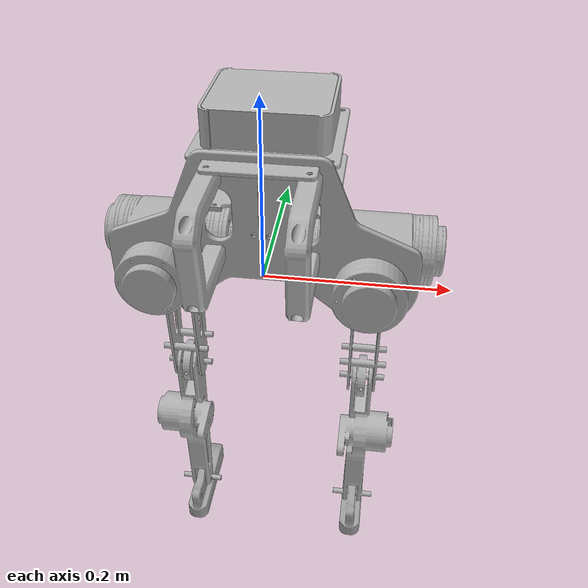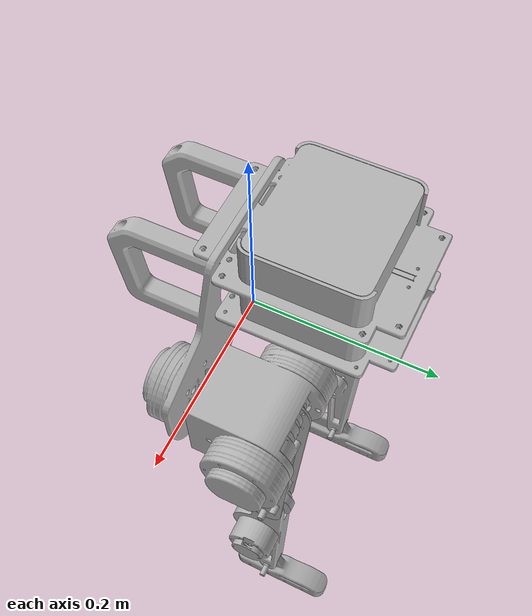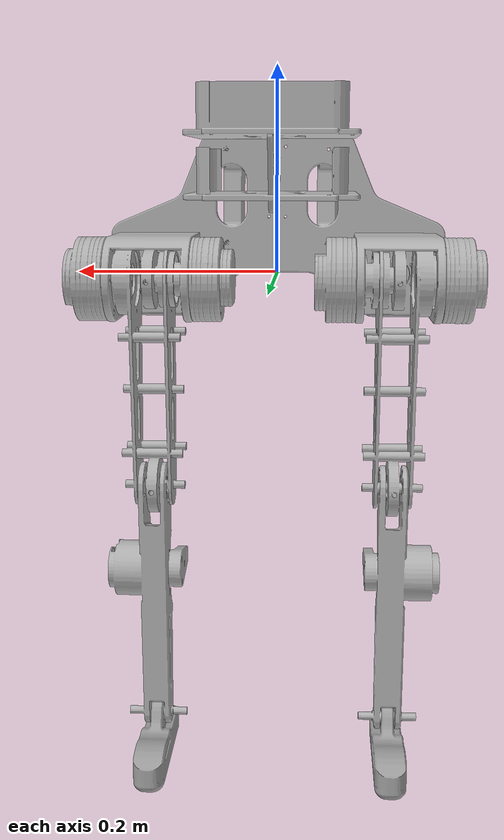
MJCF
<mujoco model="saturdayMASTER.SLDASM">
  <compiler angle="radian"/>
  <asset>
    <mesh name="base_link" file="base_link.STL"/>
    <mesh name="HR" file="HR.STL"/>
    <mesh name="TR" file="TR.STL"/>
    <mesh name="SR" file="SR.STL"/>
    <mesh name="FR" file="FR.STL"/>
    <mesh name="HL" file="HL.STL"/>
    <mesh name="TL" file="TL.STL"/>
    <mesh name="SL" file="SL.STL"/>
    <mesh name="FL" file="FL.STL"/>
    <mesh name="PCPC" file="PCPC.STL"/>
  </asset>
  <worldbody>
    <geom type="mesh" rgba="0.69804 0.69804 0.69804 1" mesh="base_link"/>
    <geom pos="0 0.1668 0.076047" type="mesh" rgba="0.69804 0.69804 0.69804 1" mesh="PCPC"/>
    <body name="HR" pos="0.116 0.0760307 0">
      <inertial pos="-0.0022112 -0.0074687 0.0012046" quat="0.610545 0.791982 -0.00018656 -0.000166422" mass="1.1716" diaginertia="0.0010107 0.000889554 0.000807186"/>
      <joint name="HR" pos="0 0 0" axis="0 -1 0" limited="false"/>
      <geom type="mesh" rgba="0.69804 0.69804 0.69804 1" mesh="HR"/>
      <body name="TR">
        <inertial pos="0.0032217 -1.4794e-12 -0.11697" quat="1 -2.44026e-05 0 0" mass="0.2485" diaginertia="0.00045966 0.00043118 6.6608e-05"/>
        <joint name="TR" pos="0 0 0" axis="-1 0 0" limited="false"/>
        <geom type="mesh" rgba="0.69804 0.69804 0.69804 1" mesh="TR"/>
        <body name="SR" pos="0 0 -0.2">
          <inertial pos="0.013454 -0.0086691 -0.1053" quat="0.999944 0.00459107 -0.00078075 0.00948332" mass="0.45579" diaginertia="0.000577103 0.000543322 0.000136545"/>
          <joint name="SR" pos="0 0 0" axis="1 0 0" limited="false"/>
          <geom type="mesh" rgba="0.69804 0.69804 0.69804 1" mesh="SR"/>
          <body name="FR" pos="0 0 -0.24">
            <inertial pos="6.2538e-06 0.015791 -0.026269" quat="0.71996 0.694016 0.000136179 -0.000175049" mass="0.12898" diaginertia="0.00019456 0.000193198 1.66785e-05"/>
            <joint name="FR" pos="0 0 0" axis="1 0 0" limited="false"/>
            <geom type="mesh" rgba="0.62745 0.62745 0.62745 1" mesh="FR"/>
          </body>
        </body>
      </body>
    </body>
    <body name="HL" pos="-0.116 0.0760307 0">
      <inertial pos="0.0022047 -0.0074687 0.0010787" quat="0.61048 0.791973 -0.00678111 0.00679143" mass="1.1716" diaginertia="0.00101075 0.00088951 0.000807185"/>
      <joint name="HL" pos="0 0 0" axis="0 -1 0" limited="false"/>
      <geom type="mesh" rgba="0.69804 0.69804 0.69804 1" mesh="HL"/>
      <body name="TL">
        <inertial pos="-0.0032217 1.4785e-12 -0.11697" quat="1 2.44026e-05 0 0" mass="0.2485" diaginertia="0.00045966 0.00043118 6.6608e-05"/>
        <joint name="TL" pos="0 0 0" axis="-1 0 0" limited="false"/>
        <geom type="mesh" rgba="0.69804 0.69804 0.69804 1" mesh="TL"/>
        <body name="SL" pos="0 0 -0.2">
          <inertial pos="-0.013454 -0.0086668 -0.10518" quat="0.999946 0.00483719 -2.73708e-05 -0.00918761" mass="0.45579" diaginertia="0.000577101 0.000543337 0.000136532"/>
          <joint name="SL" pos="0 0 0" axis="-1 0 0" limited="false"/>
          <geom type="mesh" rgba="0.69804 0.69804 0.69804 1" mesh="SL"/>
          <body name="FL" pos="0 0 -0.24">
            <inertial pos="6.2538e-06 0.015791 -0.026269" quat="0.71996 0.694016 0.000136179 -0.000175049" mass="0.12898" diaginertia="0.00019456 0.000193198 1.66785e-05"/>
            <joint name="FL" pos="0 0 0" axis="1 0 0" limited="false"/>
            <geom type="mesh" rgba="0.62745 0.62745 0.62745 1" mesh="FL"/>
          </body>
        </body>
      </body>
    </body>
  </worldbody>
</mujoco>
